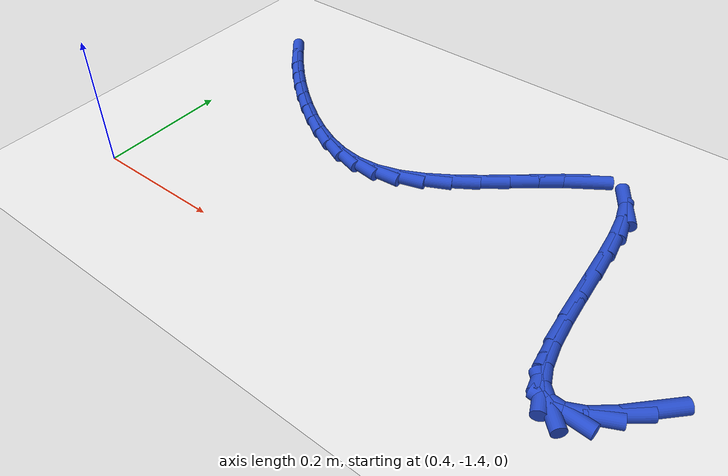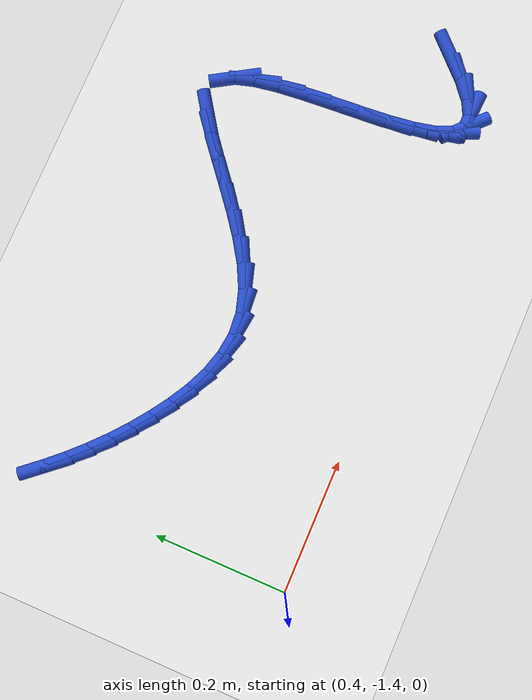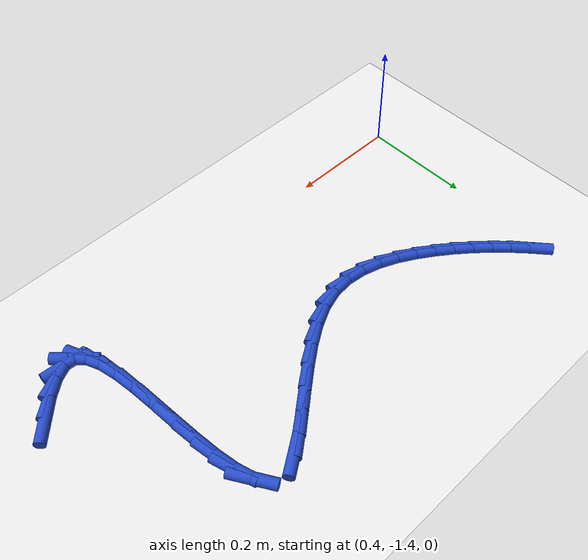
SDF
<sdf version="1.6">
 <world name="default">
  <model name="ground_plane">
   <static>1</static>
   <link name="link">
    <collision name="collision">
     <geometry><plane><normal>0 0 1</normal><size>100 100</size></plane></geometry>
     <surface><friction><ode><mu>100</mu><mu2>50</mu2></ode></friction></surface>
    </collision>
    <visual name="visual">
     <cast_shadows>0</cast_shadows>
     <geometry><plane><normal>0 0 1</normal><size>100 100</size></plane></geometry>
     <material>
      <script><uri>file://media/materials/scripts/gazebo.material</uri><name>Gazebo/WhiteGlow</name></script>
     </material>
    </visual>
   </link>
  </model>
  <model name="line">
   <link name="link_209">
    <pose>1.226705255757815 -1.3202190052236624 0.01 0 1.57 0.7936183812369407</pose>
    <collision name="collision">
     <geometry><cylinder><radius>0.01</radius><length>0.08</length></cylinder></geometry>
    </collision>
    <visual name="visual">
     <material>
      <script><name>Gazebo/Blue</name><uri>file://media/materials/scripts/gazebo.material</uri></script>
     </material>
     <geometry><cylinder><radius>0.01</radius><length>0.08</length></cylinder></geometry>
    </visual>
   </link>
   <link name="link_210">
    <pose>1.197878230402998 -1.3495238983755722 0.01 0 1.57 0.6828185450865439</pose>
    <collision name="collision">
     <geometry><cylinder><radius>0.01</radius><length>0.08</length></cylinder></geometry>
    </collision>
    <visual name="visual">
     <material>
      <script><name>Gazebo/Blue</name><uri>file://media/materials/scripts/gazebo.material</uri></script>
     </material>
     <geometry><cylinder><radius>0.01</radius><length>0.08</length></cylinder></geometry>
    </visual>
   </link>
   <link name="link_211">
    <pose>1.1715638629137775 -1.3709262608356931 0.01 0 1.57 0.45762246234785975</pose>
    <collision name="collision">
     <geometry><cylinder><radius>0.01</radius><length>0.08</length></cylinder></geometry>
    </collision>
    <visual name="visual">
     <material>
      <script><name>Gazebo/Blue</name><uri>file://media/materials/scripts/gazebo.material</uri></script>
     </material>
     <geometry><cylinder><radius>0.01</radius><length>0.08</length></cylinder></geometry>
    </visual>
   </link>
   <link name="link_212">
    <pose>1.1486792085958555 -1.382196749343841 0.01 0 1.57 -0.05631951138961497</pose>
    <collision name="collision">
     <geometry><cylinder><radius>0.01</radius><length>0.08</length></cylinder></geometry>
    </collision>
    <visual name="visual">
     <material>
      <script><name>Gazebo/Blue</name><uri>file://media/materials/scripts/gazebo.material</uri></script>
     </material>
     <geometry><cylinder><radius>0.01</radius><length>0.08</length></cylinder></geometry>
    </visual>
   </link>
   <link name="link_213">
    <pose>1.1301242111451049 -1.3811506346669822 0.01 0 1.57 -0.774465469227875</pose>
    <collision name="collision">
     <geometry><cylinder><radius>0.01</radius><length>0.08</length></cylinder></geometry>
    </collision>
    <visual name="visual">
     <material>
      <script><name>Gazebo/Blue</name><uri>file://media/materials/scripts/gazebo.material</uri></script>
     </material>
     <geometry><cylinder><radius>0.01</radius><length>0.08</length></cylinder></geometry>
    </visual>
   </link>
   <link name="link_214">
    <pose>1.1160987165518148 -1.3674285084130238 0.01 0 1.57 -1.1729340955880887</pose>
    <collision name="collision">
     <geometry><cylinder><radius>0.01</radius><length>0.08</length></cylinder></geometry>
    </collision>
    <visual name="visual">
     <material>
      <script><name>Gazebo/Blue</name><uri>file://media/materials/scripts/gazebo.material</uri></script>
     </material>
     <geometry><cylinder><radius>0.01</radius><length>0.08</length></cylinder></geometry>
    </visual>
   </link>
   <link name="link_215">
    <pose>1.1058724073405246 -1.3430961190586648 0.01 0 1.57 -1.3534969262557242</pose>
    <collision name="collision">
     <geometry><cylinder><radius>0.01</radius><length>0.08</length></cylinder></geometry>
    </collision>
    <visual name="visual">
     <material>
      <script><name>Gazebo/Blue</name><uri>file://media/materials/scripts/gazebo.material</uri></script>
     </material>
     <geometry><cylinder><radius>0.01</radius><length>0.08</length></cylinder></geometry>
    </visual>
   </link>
   <link name="link_216">
    <pose>1.0986506735847652 -1.3103868407559904 0.01 0 1.57 -1.4425109578160675</pose>
    <collision name="collision">
     <geometry><cylinder><radius>0.01</radius><length>0.08</length></cylinder></geometry>
    </collision>
    <visual name="visual">
     <material>
      <script><name>Gazebo/Blue</name><uri>file://media/materials/scripts/gazebo.material</uri></script>
     </material>
     <geometry><cylinder><radius>0.01</radius><length>0.08</length></cylinder></geometry>
    </visual>
   </link>
   <link name="link_217">
    <pose>1.0936389053580695 -1.271534047657086 0.01 0 1.57 -1.4868926054310303</pose>
    <collision name="collision">
     <geometry><cylinder><radius>0.01</radius><length>0.08</length></cylinder></geometry>
    </collision>
    <visual name="visual">
     <material>
      <script><name>Gazebo/Blue</name><uri>file://media/materials/scripts/gazebo.material</uri></script>
     </material>
     <geometry><cylinder><radius>0.01</radius><length>0.08</length></cylinder></geometry>
    </visual>
   </link>
   <link name="link_218">
    <pose>1.0900424927339705 -1.2287711139140405 0.01 0 1.57 -1.5039364778517146</pose>
    <collision name="collision">
     <geometry><cylinder><radius>0.01</radius><length>0.08</length></cylinder></geometry>
    </collision>
    <visual name="visual">
     <material>
      <script><name>Gazebo/Blue</name><uri>file://media/materials/scripts/gazebo.material</uri></script>
     </material>
     <geometry><cylinder><radius>0.01</radius><length>0.08</length></cylinder></geometry>
    </visual>
   </link>
   <link name="link_219">
    <pose>1.087066825786 -1.1843314136789387 0.01 0 1.57 -1.499148230716054</pose>
    <collision name="collision">
     <geometry><cylinder><radius>0.01</radius><length>0.08</length></cylinder></geometry>
    </collision>
    <visual name="visual">
     <material>
      <script><name>Gazebo/Blue</name><uri>file://media/materials/scripts/gazebo.material</uri></script>
     </material>
     <geometry><cylinder><radius>0.01</radius><length>0.08</length></cylinder></geometry>
    </visual>
   </link>
   <link name="link_220">
    <pose>1.08391729458769 -1.1404483211038672 0.01 0 1.57 -1.4709181979207833</pose>
    <collision name="collision">
     <geometry><cylinder><radius>0.01</radius><length>0.08</length></cylinder></geometry>
    </collision>
    <visual name="visual">
     <material>
      <script><name>Gazebo/Blue</name><uri>file://media/materials/scripts/gazebo.material</uri></script>
     </material>
     <geometry><cylinder><radius>0.01</radius><length>0.08</length></cylinder></geometry>
    </visual>
   </link>
   <link name="link_221">
    <pose>1.0797992892125734 -1.0993552103409119 0.01 0 1.57 -1.4091708883932113</pose>
    <collision name="collision">
     <geometry><cylinder><radius>0.01</radius><length>0.08</length></cylinder></geometry>
    </collision>
    <visual name="visual">
     <material>
      <script><name>Gazebo/Blue</name><uri>file://media/materials/scripts/gazebo.material</uri></script>
     </material>
     <geometry><cylinder><radius>0.01</radius><length>0.08</length></cylinder></geometry>
    </visual>
   </link>
   <link name="link_222">
    <pose>1.0739181997341825 -1.0632854555421591 0.01 0 1.57 -1.2858835806563222</pose>
    <collision name="collision">
     <geometry><cylinder><radius>0.01</radius><length>0.08</length></cylinder></geometry>
    </collision>
    <visual name="visual">
     <material>
      <script><name>Gazebo/Blue</name><uri>file://media/materials/scripts/gazebo.material</uri></script>
     </material>
     <geometry><cylinder><radius>0.01</radius><length>0.08</length></cylinder></geometry>
    </visual>
   </link>
   <link name="link_223">
    <pose>1.0654794162260497 -1.0344724308596953 0.01 0 1.57 -1.0229014597204242</pose>
    <collision name="collision">
     <geometry><cylinder><radius>0.01</radius><length>0.08</length></cylinder></geometry>
    </collision>
    <visual name="visual">
     <material>
      <script><name>Gazebo/Blue</name><uri>file://media/materials/scripts/gazebo.material</uri></script>
     </material>
     <geometry><cylinder><radius>0.01</radius><length>0.08</length></cylinder></geometry>
    </visual>
   </link>
   <link name="link_227">
    <pose>0.9949970207231357 -1.0207012167046372 0.01 0 1.57 0.5953896261482248</pose>
    <collision name="collision">
     <geometry><cylinder><radius>0.01</radius><length>0.08</length></cylinder></geometry>
    </collision>
    <visual name="visual">
     <material>
      <script><name>Gazebo/Blue</name><uri>file://media/materials/scripts/gazebo.material</uri></script>
     </material>
     <geometry><cylinder><radius>0.01</radius><length>0.08</length></cylinder></geometry>
    </visual>
   </link>
   <link name="link_228">
    <pose>0.9688520888310633 -1.0384115272444623 0.01 0 1.57 0.6639395762887675</pose>
    <collision name="collision">
     <geometry><cylinder><radius>0.01</radius><length>0.08</length></cylinder></geometry>
    </collision>
    <visual name="visual">
     <material>
      <script><name>Gazebo/Blue</name><uri>file://media/materials/scripts/gazebo.material</uri></script>
     </material>
     <geometry><cylinder><radius>0.01</radius><length>0.08</length></cylinder></geometry>
    </visual>
   </link>
   <link name="link_229">
    <pose>0.9401769203712712 -1.0608480354897305 0.01 0 1.57 0.6873214359114327</pose>
    <collision name="collision">
     <geometry><cylinder><radius>0.01</radius><length>0.08</length></cylinder></geometry>
    </collision>
    <visual name="visual">
     <material>
      <script><name>Gazebo/Blue</name><uri>file://media/materials/scripts/gazebo.material</uri></script>
     </material>
     <geometry><cylinder><radius>0.01</radius><length>0.08</length></cylinder></geometry>
    </visual>
   </link>
   <link name="link_230">
    <pose>0.9094278187585377 -1.0860882166220414 0.01 0 1.57 0.6790204482169337</pose>
    <collision name="collision">
     <geometry><cylinder><radius>0.01</radius><length>0.08</length></cylinder></geometry>
    </collision>
    <visual name="visual">
     <material>
      <script><name>Gazebo/Blue</name><uri>file://media/materials/scripts/gazebo.material</uri></script>
     </material>
     <geometry><cylinder><radius>0.01</radius><length>0.08</length></cylinder></geometry>
    </visual>
   </link>
   <link name="link_231">
    <pose>0.8770610874076417 -1.1122095458229946 0.01 0 1.57 0.642238340984251</pose>
    <collision name="collision">
     <geometry><cylinder><radius>0.01</radius><length>0.08</length></cylinder></geometry>
    </collision>
    <visual name="visual">
     <material>
      <script><name>Gazebo/Blue</name><uri>file://media/materials/scripts/gazebo.material</uri></script>
     </material>
     <geometry><cylinder><radius>0.01</radius><length>0.08</length></cylinder></geometry>
    </visual>
   </link>
   <link name="link_232">
    <pose>0.8435330297333613 -1.1372894982741897 0.01 0 1.57 0.5735886481359884</pose>
    <collision name="collision">
     <geometry><cylinder><radius>0.01</radius><length>0.08</length></cylinder></geometry>
    </collision>
    <visual name="visual">
     <material>
      <script><name>Gazebo/Blue</name><uri>file://media/materials/scripts/gazebo.material</uri></script>
     </material>
     <geometry><cylinder><radius>0.01</radius><length>0.08</length></cylinder></geometry>
    </visual>
   </link>
   <link name="link_233">
    <pose>0.8092999491504764 -1.1594055491572275 0.01 0 1.57 0.4633859749416176</pose>
    <collision name="collision">
     <geometry><cylinder><radius>0.01</radius><length>0.08</length></cylinder></geometry>
    </collision>
    <visual name="visual">
     <material>
      <script><name>Gazebo/Blue</name><uri>file://media/materials/scripts/gazebo.material</uri></script>
     </material>
     <geometry><cylinder><radius>0.01</radius><length>0.08</length></cylinder></geometry>
    </visual>
   </link>
   <link name="link_234">
    <pose>0.7748181490737635 -1.1766351736537068 0.01 0 1.57 0.295453685955388</pose>
    <collision name="collision">
     <geometry><cylinder><radius>0.01</radius><length>0.08</length></cylinder></geometry>
    </collision>
    <visual name="visual">
     <material>
      <script><name>Gazebo/Blue</name><uri>file://media/materials/scripts/gazebo.material</uri></script>
     </material>
     <geometry><cylinder><radius>0.01</radius><length>0.08</length></cylinder></geometry>
    </visual>
   </link>
   <link name="link_235">
    <pose>0.7405428102238678 -1.1870672797132733 0.01 0 1.57 0.08178388377531688</pose>
    <collision name="collision">
     <geometry><cylinder><radius>0.01</radius><length>0.08</length></cylinder></geometry>
    </collision>
    <visual name="visual">
     <material>
      <script><name>Gazebo/Blue</name><uri>file://media/materials/scripts/gazebo.material</uri></script>
     </material>
     <geometry><cylinder><radius>0.01</radius><length>0.08</length></cylinder></geometry>
    </visual>
   </link>
   <link name="link_236">
    <pose>0.7068269777626245 -1.1898308556739547 0.01 0 1.57 -0.11823773978946837</pose>
    <collision name="collision">
     <geometry><cylinder><radius>0.01</radius><length>0.08</length></cylinder></geometry>
    </collision>
    <visual name="visual">
     <material>
      <script><name>Gazebo/Blue</name><uri>file://media/materials/scripts/gazebo.material</uri></script>
     </material>
     <geometry><cylinder><radius>0.01</radius><length>0.08</length></cylinder></geometry>
    </visual>
   </link>
   <link name="link_237">
    <pose>0.6738412874944616 -1.1859124250702904 0.01 0 1.57 -0.28545647466302143</pose>
    <collision name="collision">
     <geometry><cylinder><radius>0.01</radius><length>0.08</length></cylinder></geometry>
    </collision>
    <visual name="visual">
     <material>
      <script><name>Gazebo/Blue</name><uri>file://media/materials/scripts/gazebo.material</uri></script>
     </material>
     <geometry><cylinder><radius>0.01</radius><length>0.08</length></cylinder></geometry>
    </visual>
   </link>
   <link name="link_238">
    <pose>0.6417374847391907 -1.1764908795288507 0.01 0 1.57 -0.416524584676548</pose>
    <collision name="collision">
     <geometry><cylinder><radius>0.01</radius><length>0.08</length></cylinder></geometry>
    </collision>
    <visual name="visual">
     <material>
      <script><name>Gazebo/Blue</name><uri>file://media/materials/scripts/gazebo.material</uri></script>
     </material>
     <geometry><cylinder><radius>0.01</radius><length>0.08</length></cylinder></geometry>
    </visual>
   </link>
   <link name="link_239">
    <pose>0.610667314816624 -1.1627451106762061 0.01 0 1.57 -0.5144436160829865</pose>
    <collision name="collision">
     <geometry><cylinder><radius>0.01</radius><length>0.08</length></cylinder></geometry>
    </collision>
    <visual name="visual">
     <material>
      <script><name>Gazebo/Blue</name><uri>file://media/materials/scripts/gazebo.material</uri></script>
     </material>
     <geometry><cylinder><radius>0.01</radius><length>0.08</length></cylinder></geometry>
    </visual>
   </link>
   <link name="link_240">
    <pose>0.5807825230465729 -1.1458540101389274 0.01 0 1.57 -0.5840355490607697</pose>
    <collision name="collision">
     <geometry><cylinder><radius>0.01</radius><length>0.08</length></cylinder></geometry>
    </collision>
    <visual name="visual">
     <material>
      <script><name>Gazebo/Blue</name><uri>file://media/materials/scripts/gazebo.material</uri></script>
     </material>
     <geometry><cylinder><radius>0.01</radius><length>0.08</length></cylinder></geometry>
    </visual>
   </link>
   <link name="link_241">
    <pose>0.5522321293230079 -1.1269835828222647 0.01 0 1.57 -0.6381489091505333</pose>
    <collision name="collision">
     <geometry><cylinder><radius>0.01</radius><length>0.08</length></cylinder></geometry>
    </collision>
    <visual name="visual">
     <material>
      <script><name>Gazebo/Blue</name><uri>file://media/materials/scripts/gazebo.material</uri></script>
     </material>
     <geometry><cylinder><radius>0.01</radius><length>0.08</length></cylinder></geometry>
    </visual>
   </link>
   <link name="link_242">
    <pose>0.5250670691249054 -1.1068360578417633 0.01 0 1.57 -0.689256979528034</pose>
    <collision name="collision">
     <geometry><cylinder><radius>0.01</radius><length>0.08</length></cylinder></geometry>
    </collision>
    <visual name="visual">
     <material>
      <script><name>Gazebo/Blue</name><uri>file://media/materials/scripts/gazebo.material</uri></script>
     </material>
     <geometry><cylinder><radius>0.01</radius><length>0.08</length></cylinder></geometry>
    </visual>
   </link>
   <link name="link_243">
    <pose>0.4992152356312296 -1.0855318793284892 0.01 0 1.57 -0.7377437249509687</pose>
    <collision name="collision">
     <geometry><cylinder><radius>0.01</radius><length>0.08</length></cylinder></geometry>
    </collision>
    <visual name="visual">
     <material>
      <script><name>Gazebo/Blue</name><uri>file://media/materials/scripts/gazebo.material</uri></script>
     </material>
     <geometry><cylinder><radius>0.01</radius><length>0.08</length></cylinder></geometry>
    </visual>
   </link>
   <link name="link_244">
    <pose>0.47459672446364976 -1.0631546219649497 0.01 0 1.57 -0.7832984911863506</pose>
    <collision name="collision">
     <geometry><cylinder><radius>0.01</radius><length>0.08</length></cylinder></geometry>
    </collision>
    <visual name="visual">
     <material>
      <script><name>Gazebo/Blue</name><uri>file://media/materials/scripts/gazebo.material</uri></script>
     </material>
     <geometry><cylinder><radius>0.01</radius><length>0.08</length></cylinder></geometry>
    </visual>
   </link>
   <link name="link_245">
    <pose>0.4511316312438328 -1.0397878604336503 0.01 0 1.57 -0.8256879478648699</pose>
    <collision name="collision">
     <geometry><cylinder><radius>0.01</radius><length>0.08</length></cylinder></geometry>
    </collision>
    <visual name="visual">
     <material>
      <script><name>Gazebo/Blue</name><uri>file://media/materials/scripts/gazebo.material</uri></script>
     </material>
     <geometry><cylinder><radius>0.01</radius><length>0.08</length></cylinder></geometry>
    </visual>
   </link>
   <link name="link_246">
    <pose>0.42874005159344664 -1.0155151694170972 0.01 0 1.57 -0.8647501298181359</pose>
    <collision name="collision">
     <geometry><cylinder><radius>0.01</radius><length>0.08</length></cylinder></geometry>
    </collision>
    <visual name="visual">
     <material>
      <script><name>Gazebo/Blue</name><uri>file://media/materials/scripts/gazebo.material</uri></script>
     </material>
     <geometry><cylinder><radius>0.01</radius><length>0.08</length></cylinder></geometry>
    </visual>
   </link>
  </model>
 </world>
</sdf>
